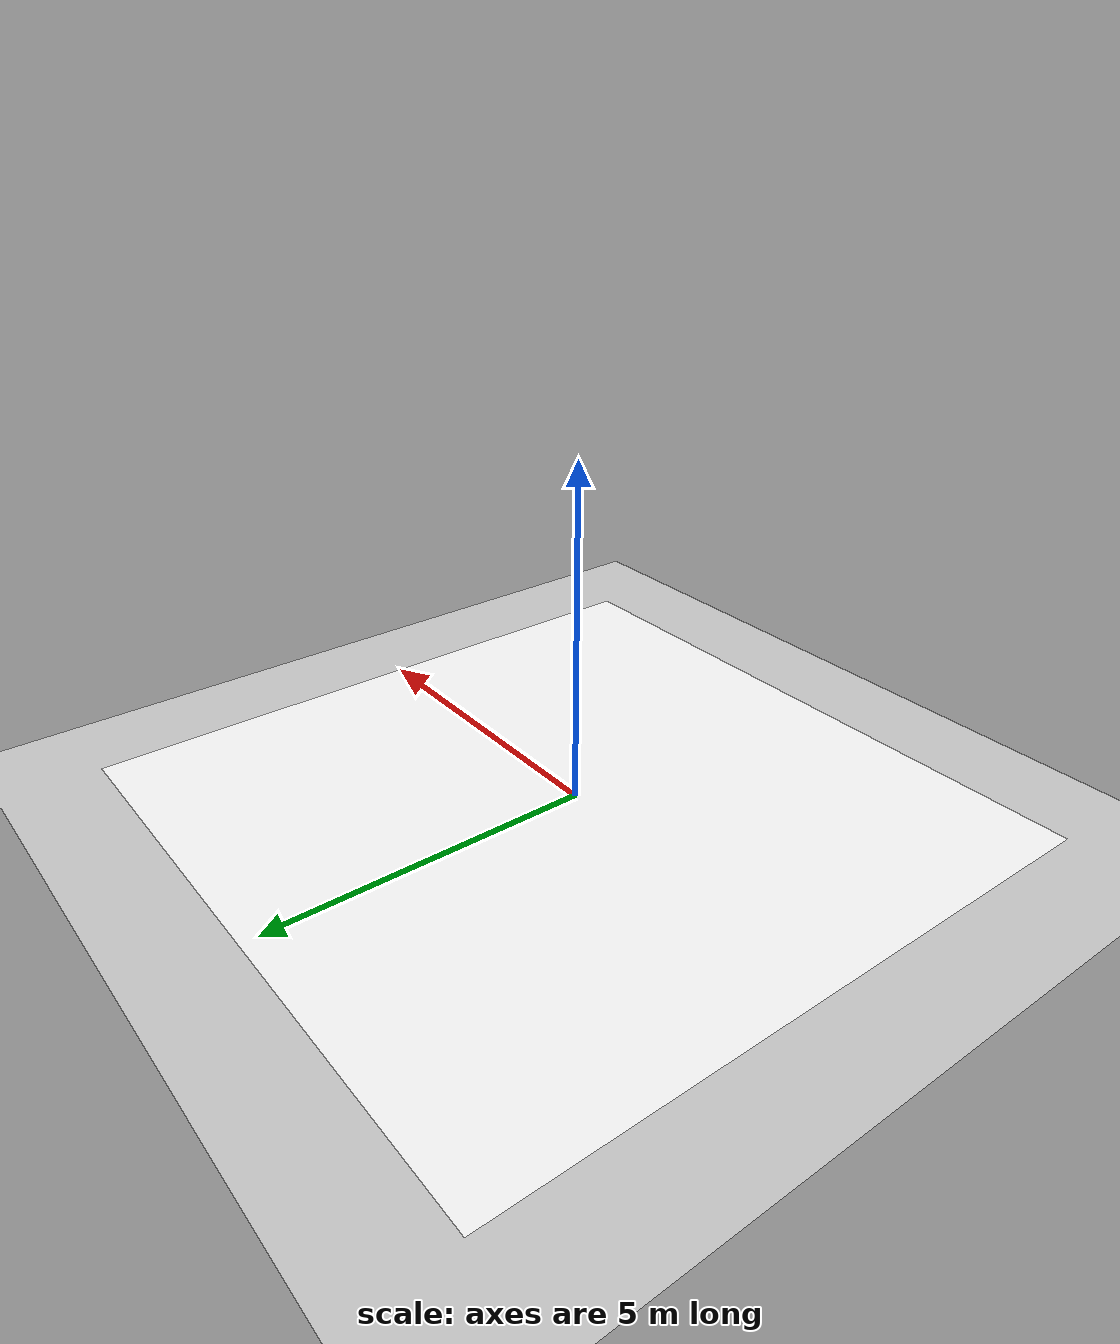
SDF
<?xml version="1.0" ?>
<sdf version="1.4">
  <world name="default">
    <include>
      <uri>model://ground_plane</uri>
    </include>
    <include>
      <uri>model://sun</uri>
    </include>

    <light type="point" name="my_light">
            <pose>0 0 10 0 0 0</pose>
            <diffuse>.5 .5 .5 1</diffuse>
            <specular>.1 .1 .1 1</specular>
            <attenuation>
                <range>20</range>
                <constant>0.5</constant>
                <linear>0.01</linear>
                <quadratic>0.0</quadratic>
            </attenuation>
            <direction>0 0 -1</direction>
            <cast_shadows>true</cast_shadows>
        </light>

    <model name="simple_ellipse">
      <pose>-2.5 -2.5 0.005  0 0 0</pose>
      <static>true</static>
      <link name="body">
        <visual name="visual">
          <geometry>
            <mesh><uri>model://roberto_gazebo/worlds/dae/simple_ellipse_2.dae</uri></mesh>
          </geometry>
        </visual>
      </link>
    </model>
  </world>
</sdf>
